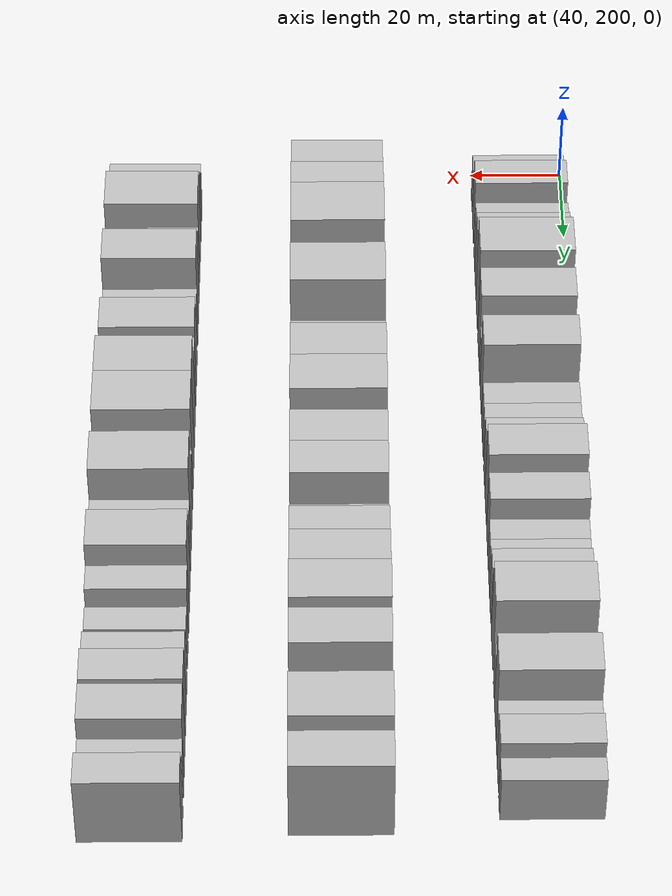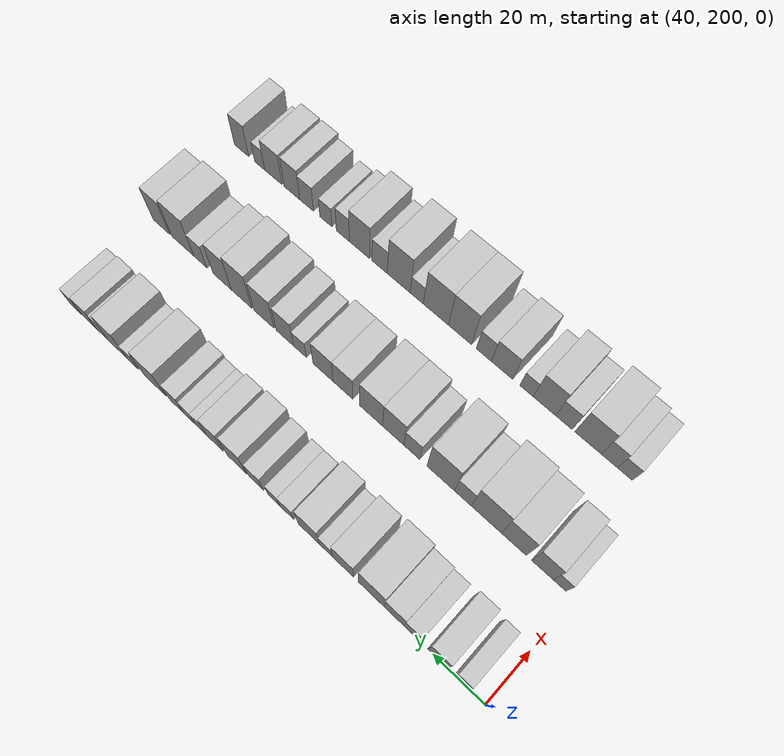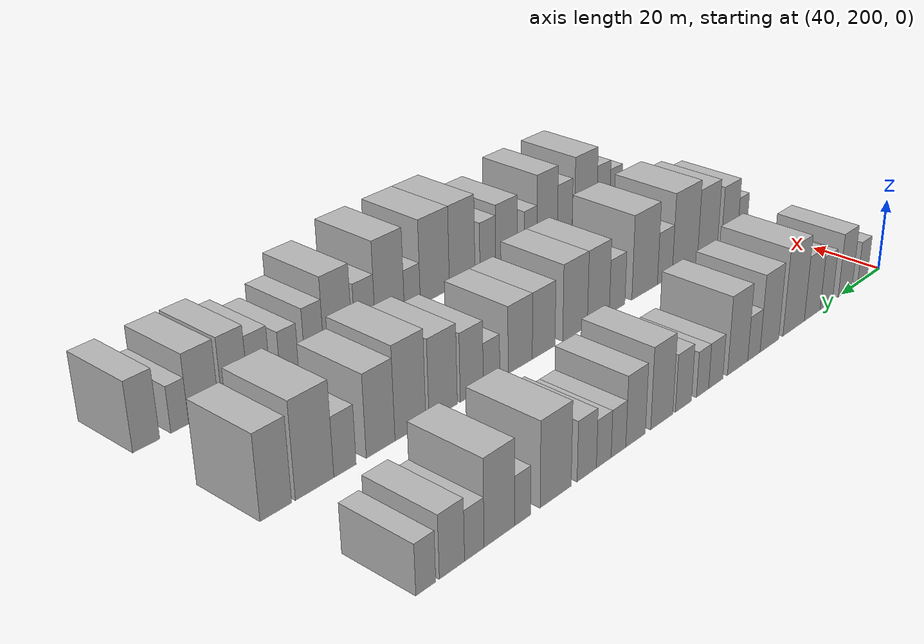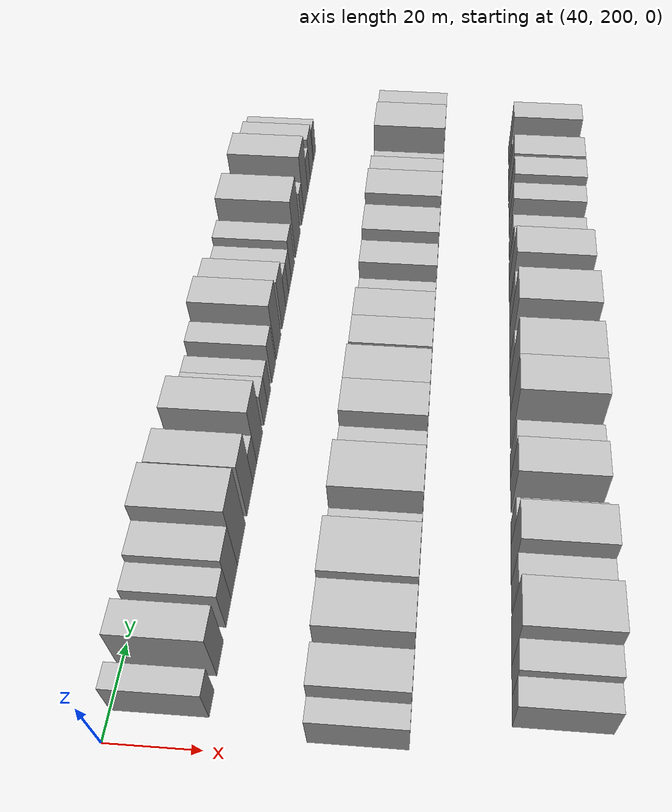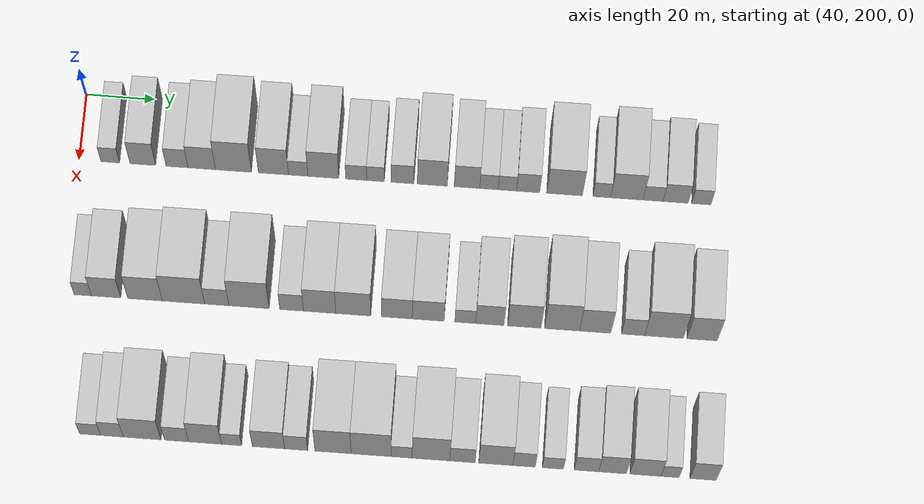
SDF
<sdf version="1.6">
 <world name="default">
  <model name="building_57">
   <static>1</static>
   <pose>50.0000 209.0535 0 0.000000 0.000000 0.000000</pose>
   <link name="link">
    <pose>0 0 6.00 0 0 0</pose>
    <collision name="collision"><geometry><box><size>20.0000 5.3269 12.0000</size></box></geometry></collision>
    <visual name="visual">
     <cast_shadows>0</cast_shadows>
     <geometry><box><size>20.0000 5.3269 12.0000</size></box></geometry>
     <material>
      <script>
       <uri>model://HANNAS_wall/materials/scripts</uri>
       <uri>model://HANNAS_wall/materials/textures</uri>
       <name>vrc/HANNAS_wall</name>
      </script>
     </material>
    </visual>
   </link>
  </model>
  <model name="building_58">
   <static>1</static>
   <pose>50.0000 218.3845 0 0.000000 0.000000 0.000000</pose>
   <link name="link">
    <pose>0 0 9.00 0 0 0</pose>
    <collision name="collision"><geometry><box><size>20.0000 7.3353 18.0000</size></box></geometry></collision>
    <visual name="visual">
     <cast_shadows>0</cast_shadows>
     <geometry><box><size>20.0000 7.3353 18.0000</size></box></geometry>
     <material>
      <script>
       <uri>model://HANNAS_wall/materials/scripts</uri>
       <uri>model://HANNAS_wall/materials/textures</uri>
       <name>vrc/HANNAS_wall</name>
      </script>
     </material>
    </visual>
   </link>
  </model>
  <model name="building_59">
   <static>1</static>
   <pose>50.0000 228.1901 0 0.000000 0.000000 0.000000</pose>
   <link name="link">
    <pose>0 0 7.50 0 0 0</pose>
    <collision name="collision"><geometry><box><size>20.0000 6.2759 15.0000</size></box></geometry></collision>
    <visual name="visual">
     <cast_shadows>0</cast_shadows>
     <geometry><box><size>20.0000 6.2759 15.0000</size></box></geometry>
     <material>
      <script>
       <uri>model://HANNAS_wall/materials/scripts</uri>
       <uri>model://HANNAS_wall/materials/textures</uri>
       <name>vrc/HANNAS_wall</name>
      </script>
     </material>
    </visual>
   </link>
  </model>
  <model name="building_60">
   <static>1</static>
   <pose>50.0000 235.2603 0 0.000000 0.000000 0.000000</pose>
   <link name="link">
    <pose>0 0 9.00 0 0 0</pose>
    <collision name="collision"><geometry><box><size>20.0000 7.8644 18.0000</size></box></geometry></collision>
    <visual name="visual">
     <cast_shadows>0</cast_shadows>
     <geometry><box><size>20.0000 7.8644 18.0000</size></box></geometry>
     <material>
      <script>
       <uri>model://HANNAS_wall/materials/scripts</uri>
       <uri>model://HANNAS_wall/materials/textures</uri>
       <name>vrc/HANNAS_wall</name>
      </script>
     </material>
    </visual>
   </link>
  </model>
  <model name="building_61">
   <static>1</static>
   <pose>50.0000 244.3471 0 0.000000 0.000000 0.000000</pose>
   <link name="link">
    <pose>0 0 12.00 0 0 0</pose>
    <collision name="collision"><geometry><box><size>20.0000 10.3093 24.0000</size></box></geometry></collision>
    <visual name="visual">
     <cast_shadows>0</cast_shadows>
     <geometry><box><size>20.0000 10.3093 24.0000</size></box></geometry>
     <material>
      <script>
       <uri>model://HANNAS_wall/materials/scripts</uri>
       <uri>model://HANNAS_wall/materials/textures</uri>
       <name>vrc/HANNAS_wall</name>
      </script>
     </material>
    </visual>
   </link>
  </model>
  <model name="building_62">
   <static>1</static>
   <pose>50.0000 255.7990 0 0.000000 0.000000 0.000000</pose>
   <link name="link">
    <pose>0 0 10.50 0 0 0</pose>
    <collision name="collision"><geometry><box><size>20.0000 8.5945 21.0000</size></box></geometry></collision>
    <visual name="visual">
     <cast_shadows>0</cast_shadows>
     <geometry><box><size>20.0000 8.5945 21.0000</size></box></geometry>
     <material>
      <script>
       <uri>model://HANNAS_wall/materials/scripts</uri>
       <uri>model://HANNAS_wall/materials/textures</uri>
       <name>vrc/HANNAS_wall</name>
      </script>
     </material>
    </visual>
   </link>
  </model>
  <model name="building_63">
   <static>1</static>
   <pose>50.0000 262.8640 0 0.000000 0.000000 0.000000</pose>
   <link name="link">
    <pose>0 0 6.00 0 0 0</pose>
    <collision name="collision"><geometry><box><size>20.0000 5.5355 12.0000</size></box></geometry></collision>
    <visual name="visual">
     <cast_shadows>0</cast_shadows>
     <geometry><box><size>20.0000 5.5355 12.0000</size></box></geometry>
     <material>
      <script>
       <uri>model://HANNAS_wall/materials/scripts</uri>
       <uri>model://HANNAS_wall/materials/textures</uri>
       <name>vrc/HANNAS_wall</name>
      </script>
     </material>
    </visual>
   </link>
  </model>
  <model name="building_64">
   <static>1</static>
   <pose>50.0000 270.0461 0 0.000000 0.000000 0.000000</pose>
   <link name="link">
    <pose>0 0 10.50 0 0 0</pose>
    <collision name="collision"><geometry><box><size>20.0000 8.8287 21.0000</size></box></geometry></collision>
    <visual name="visual">
     <cast_shadows>0</cast_shadows>
     <geometry><box><size>20.0000 8.8287 21.0000</size></box></geometry>
     <material>
      <script>
       <uri>model://HANNAS_wall/materials/scripts</uri>
       <uri>model://HANNAS_wall/materials/textures</uri>
       <name>vrc/HANNAS_wall</name>
      </script>
     </material>
    </visual>
   </link>
  </model>
  <model name="building_65">
   <static>1</static>
   <pose>50.0000 279.4493 0 0.000000 0.000000 0.000000</pose>
   <link name="link">
    <pose>0 0 6.00 0 0 0</pose>
    <collision name="collision"><geometry><box><size>20.0000 5.9778 12.0000</size></box></geometry></collision>
    <visual name="visual">
     <cast_shadows>0</cast_shadows>
     <geometry><box><size>20.0000 5.9778 12.0000</size></box></geometry>
     <material>
      <script>
       <uri>model://HANNAS_wall/materials/scripts</uri>
       <uri>model://HANNAS_wall/materials/textures</uri>
       <name>vrc/HANNAS_wall</name>
      </script>
     </material>
    </visual>
   </link>
  </model>
  <model name="building_66">
   <static>1</static>
   <pose>50.0000 284.9581 0 0.000000 0.000000 0.000000</pose>
   <link name="link">
    <pose>0 0 6.00 0 0 0</pose>
    <collision name="collision"><geometry><box><size>20.0000 5.0398 12.0000</size></box></geometry></collision>
    <visual name="visual">
     <cast_shadows>0</cast_shadows>
     <geometry><box><size>20.0000 5.0398 12.0000</size></box></geometry>
     <material>
      <script>
       <uri>model://HANNAS_wall/materials/scripts</uri>
       <uri>model://HANNAS_wall/materials/textures</uri>
       <name>vrc/HANNAS_wall</name>
      </script>
     </material>
    </visual>
   </link>
  </model>
  <model name="building_67">
   <static>1</static>
   <pose>50.0000 292.6958 0 0.000000 0.000000 0.000000</pose>
   <link name="link">
    <pose>0 0 7.50 0 0 0</pose>
    <collision name="collision"><geometry><box><size>20.0000 6.4356 15.0000</size></box></geometry></collision>
    <visual name="visual">
     <cast_shadows>0</cast_shadows>
     <geometry><box><size>20.0000 6.4356 15.0000</size></box></geometry>
     <material>
      <script>
       <uri>model://HANNAS_wall/materials/scripts</uri>
       <uri>model://HANNAS_wall/materials/textures</uri>
       <name>vrc/HANNAS_wall</name>
      </script>
     </material>
    </visual>
   </link>
  </model>
  <model name="building_68">
   <static>1</static>
   <pose>50.0000 301.1782 0 0.000000 0.000000 0.000000</pose>
   <link name="link">
    <pose>0 0 10.50 0 0 0</pose>
    <collision name="collision"><geometry><box><size>20.0000 8.5291 21.0000</size></box></geometry></collision>
    <visual name="visual">
     <cast_shadows>0</cast_shadows>
     <geometry><box><size>20.0000 8.5291 21.0000</size></box></geometry>
     <material>
      <script>
       <uri>model://HANNAS_wall/materials/scripts</uri>
       <uri>model://HANNAS_wall/materials/textures</uri>
       <name>vrc/HANNAS_wall</name>
      </script>
     </material>
    </visual>
   </link>
  </model>
  <model name="building_69">
   <static>1</static>
   <pose>50.0000 311.0657 0 0.000000 0.000000 0.000000</pose>
   <link name="link">
    <pose>0 0 9.00 0 0 0</pose>
    <collision name="collision"><geometry><box><size>20.0000 7.2458 18.0000</size></box></geometry></collision>
    <visual name="visual">
     <cast_shadows>0</cast_shadows>
     <geometry><box><size>20.0000 7.2458 18.0000</size></box></geometry>
     <material>
      <script>
       <uri>model://HANNAS_wall/materials/scripts</uri>
       <uri>model://HANNAS_wall/materials/textures</uri>
       <name>vrc/HANNAS_wall</name>
      </script>
     </material>
    </visual>
   </link>
  </model>
  <model name="building_70">
   <static>1</static>
   <pose>50.0000 317.3248 0 0.000000 0.000000 0.000000</pose>
   <link name="link">
    <pose>0 0 6.00 0 0 0</pose>
    <collision name="collision"><geometry><box><size>20.0000 5.2724 12.0000</size></box></geometry></collision>
    <visual name="visual">
     <cast_shadows>0</cast_shadows>
     <geometry><box><size>20.0000 5.2724 12.0000</size></box></geometry>
     <material>
      <script>
       <uri>model://HANNAS_wall/materials/scripts</uri>
       <uri>model://HANNAS_wall/materials/textures</uri>
       <name>vrc/HANNAS_wall</name>
      </script>
     </material>
    </visual>
   </link>
  </model>
  <model name="building_71">
   <static>1</static>
   <pose>50.0000 322.5603 0 0.000000 0.000000 0.000000</pose>
   <link name="link">
    <pose>0 0 6.00 0 0 0</pose>
    <collision name="collision"><geometry><box><size>20.0000 5.1985 12.0000</size></box></geometry></collision>
    <visual name="visual">
     <cast_shadows>0</cast_shadows>
     <geometry><box><size>20.0000 5.1985 12.0000</size></box></geometry>
     <material>
      <script>
       <uri>model://HANNAS_wall/materials/scripts</uri>
       <uri>model://HANNAS_wall/materials/textures</uri>
       <name>vrc/HANNAS_wall</name>
      </script>
     </material>
    </visual>
   </link>
  </model>
  <model name="building_72">
   <static>1</static>
   <pose>50.0000 328.4707 0 0.000000 0.000000 0.000000</pose>
   <link name="link">
    <pose>0 0 7.50 0 0 0</pose>
    <collision name="collision"><geometry><box><size>20.0000 6.6223 15.0000</size></box></geometry></collision>
    <visual name="visual">
     <cast_shadows>0</cast_shadows>
     <geometry><box><size>20.0000 6.6223 15.0000</size></box></geometry>
     <material>
      <script>
       <uri>model://HANNAS_wall/materials/scripts</uri>
       <uri>model://HANNAS_wall/materials/textures</uri>
       <name>vrc/HANNAS_wall</name>
      </script>
     </material>
    </visual>
   </link>
  </model>
  <model name="building_73">
   <static>1</static>
   <pose>50.0000 338.8678 0 0.000000 0.000000 0.000000</pose>
   <link name="link">
    <pose>0 0 10.50 0 0 0</pose>
    <collision name="collision"><geometry><box><size>20.0000 10.1719 21.0000</size></box></geometry></collision>
    <visual name="visual">
     <cast_shadows>0</cast_shadows>
     <geometry><box><size>20.0000 10.1719 21.0000</size></box></geometry>
     <material>
      <script>
       <uri>model://HANNAS_wall/materials/scripts</uri>
       <uri>model://HANNAS_wall/materials/textures</uri>
       <name>vrc/HANNAS_wall</name>
      </script>
     </material>
    </visual>
   </link>
  </model>
  <model name="building_74">
   <static>1</static>
   <pose>50.0000 349.4622 0 0.000000 0.000000 0.000000</pose>
   <link name="link">
    <pose>0 0 6.00 0 0 0</pose>
    <collision name="collision"><geometry><box><size>20.0000 5.0168 12.0000</size></box></geometry></collision>
    <visual name="visual">
     <cast_shadows>0</cast_shadows>
     <geometry><box><size>20.0000 5.0168 12.0000</size></box></geometry>
     <material>
      <script>
       <uri>model://HANNAS_wall/materials/scripts</uri>
       <uri>model://HANNAS_wall/materials/textures</uri>
       <name>vrc/HANNAS_wall</name>
      </script>
     </material>
    </visual>
   </link>
  </model>
  <model name="building_75">
   <static>1</static>
   <pose>50.0000 356.5924 0 0.000000 0.000000 0.000000</pose>
   <link name="link">
    <pose>0 0 10.50 0 0 0</pose>
    <collision name="collision"><geometry><box><size>20.0000 9.2437 21.0000</size></box></geometry></collision>
    <visual name="visual">
     <cast_shadows>0</cast_shadows>
     <geometry><box><size>20.0000 9.2437 21.0000</size></box></geometry>
     <material>
      <script>
       <uri>model://HANNAS_wall/materials/scripts</uri>
       <uri>model://HANNAS_wall/materials/textures</uri>
       <name>vrc/HANNAS_wall</name>
      </script>
     </material>
    </visual>
   </link>
  </model>
  <model name="building_76">
   <static>1</static>
   <pose>50.0000 364.0667 0 0.000000 0.000000 0.000000</pose>
   <link name="link">
    <pose>0 0 6.00 0 0 0</pose>
    <collision name="collision"><geometry><box><size>20.0000 5.7049 12.0000</size></box></geometry></collision>
    <visual name="visual">
     <cast_shadows>0</cast_shadows>
     <geometry><box><size>20.0000 5.7049 12.0000</size></box></geometry>
     <material>
      <script>
       <uri>model://HANNAS_wall/materials/scripts</uri>
       <uri>model://HANNAS_wall/materials/textures</uri>
       <name>vrc/HANNAS_wall</name>
      </script>
     </material>
    </visual>
   </link>
  </model>
  <model name="building_77">
   <static>1</static>
   <pose>50.0000 370.4926 0 0.000000 0.000000 0.000000</pose>
   <link name="link">
    <pose>0 0 7.50 0 0 0</pose>
    <collision name="collision"><geometry><box><size>20.0000 7.1469 15.0000</size></box></geometry></collision>
    <visual name="visual">
     <cast_shadows>0</cast_shadows>
     <geometry><box><size>20.0000 7.1469 15.0000</size></box></geometry>
     <material>
      <script>
       <uri>model://HANNAS_wall/materials/scripts</uri>
       <uri>model://HANNAS_wall/materials/textures</uri>
       <name>vrc/HANNAS_wall</name>
      </script>
     </material>
    </visual>
   </link>
  </model>
  <model name="building_78">
   <static>1</static>
   <pose>50.0000 377.7882 0 0.000000 0.000000 0.000000</pose>
   <link name="link">
    <pose>0 0 6.00 0 0 0</pose>
    <collision name="collision"><geometry><box><size>20.0000 5.4443 12.0000</size></box></geometry></collision>
    <visual name="visual">
     <cast_shadows>0</cast_shadows>
     <geometry><box><size>20.0000 5.4443 12.0000</size></box></geometry>
     <material>
      <script>
       <uri>model://HANNAS_wall/materials/scripts</uri>
       <uri>model://HANNAS_wall/materials/textures</uri>
       <name>vrc/HANNAS_wall</name>
      </script>
     </material>
    </visual>
   </link>
  </model>
  <model name="building_140">
   <static>1</static>
   <pose>90.0000 205.4932 0 0.000000 0.000000 0.000000</pose>
   <link name="link">
    <pose>0 0 6.00 0 0 0</pose>
    <collision name="collision"><geometry><box><size>20.0000 4.8866 12.0000</size></box></geometry></collision>
    <visual name="visual">
     <cast_shadows>0</cast_shadows>
     <geometry><box><size>20.0000 4.8866 12.0000</size></box></geometry>
     <material>
      <script>
       <uri>model://HANNAS_wall/materials/scripts</uri>
       <uri>model://HANNAS_wall/materials/textures</uri>
       <name>vrc/HANNAS_wall</name>
      </script>
     </material>
    </visual>
   </link>
  </model>
  <model name="building_141">
   <static>1</static>
   <pose>90.0000 212.0581 0 0.000000 0.000000 0.000000</pose>
   <link name="link">
    <pose>0 0 9.00 0 0 0</pose>
    <collision name="collision"><geometry><box><size>20.0000 8.2431 18.0000</size></box></geometry></collision>
    <visual name="visual">
     <cast_shadows>0</cast_shadows>
     <geometry><box><size>20.0000 8.2431 18.0000</size></box></geometry>
     <material>
      <script>
       <uri>model://HANNAS_wall/materials/scripts</uri>
       <uri>model://HANNAS_wall/materials/textures</uri>
       <name>vrc/HANNAS_wall</name>
      </script>
     </material>
    </visual>
   </link>
  </model>
  <model name="building_142">
   <static>1</static>
   <pose>90.0000 223.0685 0 0.000000 0.000000 0.000000</pose>
   <link name="link">
    <pose>0 0 10.50 0 0 0</pose>
    <collision name="collision"><geometry><box><size>20.0000 9.7777 21.0000</size></box></geometry></collision>
    <visual name="visual">
     <cast_shadows>0</cast_shadows>
     <geometry><box><size>20.0000 9.7777 21.0000</size></box></geometry>
     <material>
      <script>
       <uri>model://HANNAS_wall/materials/scripts</uri>
       <uri>model://HANNAS_wall/materials/textures</uri>
       <name>vrc/HANNAS_wall</name>
      </script>
     </material>
    </visual>
   </link>
  </model>
  <model name="building_143">
   <static>1</static>
   <pose>90.0000 233.9343 0 0.000000 0.000000 0.000000</pose>
   <link name="link">
    <pose>0 0 12.00 0 0 0</pose>
    <collision name="collision"><geometry><box><size>20.0000 11.9538 24.0000</size></box></geometry></collision>
    <visual name="visual">
     <cast_shadows>0</cast_shadows>
     <geometry><box><size>20.0000 11.9538 24.0000</size></box></geometry>
     <material>
      <script>
       <uri>model://HANNAS_wall/materials/scripts</uri>
       <uri>model://HANNAS_wall/materials/textures</uri>
       <name>vrc/HANNAS_wall</name>
      </script>
     </material>
    </visual>
   </link>
  </model>
  <model name="building_144">
   <static>1</static>
   <pose>90.0000 243.3191 0 0.000000 0.000000 0.000000</pose>
   <link name="link">
    <pose>0 0 7.50 0 0 0</pose>
    <collision name="collision"><geometry><box><size>20.0000 6.8157 15.0000</size></box></geometry></collision>
    <visual name="visual">
     <cast_shadows>0</cast_shadows>
     <geometry><box><size>20.0000 6.8157 15.0000</size></box></geometry>
     <material>
      <script>
       <uri>model://HANNAS_wall/materials/scripts</uri>
       <uri>model://HANNAS_wall/materials/textures</uri>
       <name>vrc/HANNAS_wall</name>
      </script>
     </material>
    </visual>
   </link>
  </model>
  <model name="building_145">
   <static>1</static>
   <pose>90.0000 252.4125 0 0.000000 0.000000 0.000000</pose>
   <link name="link">
    <pose>0 0 12.00 0 0 0</pose>
    <collision name="collision"><geometry><box><size>20.0000 11.3711 24.0000</size></box></geometry></collision>
    <visual name="visual">
     <cast_shadows>0</cast_shadows>
     <geometry><box><size>20.0000 11.3711 24.0000</size></box></geometry>
     <material>
      <script>
       <uri>model://HANNAS_wall/materials/scripts</uri>
       <uri>model://HANNAS_wall/materials/textures</uri>
       <name>vrc/HANNAS_wall</name>
      </script>
     </material>
    </visual>
   </link>
  </model>
  <model name="building_146">
   <static>1</static>
   <pose>90.0000 264.4256 0 0.000000 0.000000 0.000000</pose>
   <link name="link">
    <pose>0 0 7.50 0 0 0</pose>
    <collision name="collision"><geometry><box><size>20.0000 6.6551 15.0000</size></box></geometry></collision>
    <visual name="visual">
     <cast_shadows>0</cast_shadows>
     <geometry><box><size>20.0000 6.6551 15.0000</size></box></geometry>
     <material>
      <script>
       <uri>model://HANNAS_wall/materials/scripts</uri>
       <uri>model://HANNAS_wall/materials/textures</uri>
       <name>vrc/HANNAS_wall</name>
      </script>
     </material>
    </visual>
   </link>
  </model>
  <model name="building_147">
   <static>1</static>
   <pose>90.0000 272.3070 0 0.000000 0.000000 0.000000</pose>
   <link name="link">
    <pose>0 0 10.50 0 0 0</pose>
    <collision name="collision"><geometry><box><size>20.0000 9.1076 21.0000</size></box></geometry></collision>
    <visual name="visual">
     <cast_shadows>0</cast_shadows>
     <geometry><box><size>20.0000 9.1076 21.0000</size></box></geometry>
     <material>
      <script>
       <uri>model://HANNAS_wall/materials/scripts</uri>
       <uri>model://HANNAS_wall/materials/textures</uri>
       <name>vrc/HANNAS_wall</name>
      </script>
     </material>
    </visual>
   </link>
  </model>
  <model name="building_148">
   <static>1</static>
   <pose>90.0000 281.7952 0 0.000000 0.000000 0.000000</pose>
   <link name="link">
    <pose>0 0 10.50 0 0 0</pose>
    <collision name="collision"><geometry><box><size>20.0000 9.8687 21.0000</size></box></geometry></collision>
    <visual name="visual">
     <cast_shadows>0</cast_shadows>
     <geometry><box><size>20.0000 9.8687 21.0000</size></box></geometry>
     <material>
      <script>
       <uri>model://HANNAS_wall/materials/scripts</uri>
       <uri>model://HANNAS_wall/materials/textures</uri>
       <name>vrc/HANNAS_wall</name>
      </script>
     </material>
    </visual>
   </link>
  </model>
  <model name="building_149">
   <static>1</static>
   <pose>90.0000 294.0763 0 0.000000 0.000000 0.000000</pose>
   <link name="link">
    <pose>0 0 9.00 0 0 0</pose>
    <collision name="collision"><geometry><box><size>20.0000 8.6936 18.0000</size></box></geometry></collision>
    <visual name="visual">
     <cast_shadows>0</cast_shadows>
     <geometry><box><size>20.0000 8.6936 18.0000</size></box></geometry>
     <material>
      <script>
       <uri>model://HANNAS_wall/materials/scripts</uri>
       <uri>model://HANNAS_wall/materials/textures</uri>
       <name>vrc/HANNAS_wall</name>
      </script>
     </material>
    </visual>
   </link>
  </model>
  <model name="building_150">
   <static>1</static>
   <pose>90.0000 302.8965 0 0.000000 0.000000 0.000000</pose>
   <link name="link">
    <pose>0 0 9.00 0 0 0</pose>
    <collision name="collision"><geometry><box><size>20.0000 8.9467 18.0000</size></box></geometry></collision>
    <visual name="visual">
     <cast_shadows>0</cast_shadows>
     <geometry><box><size>20.0000 8.9467 18.0000</size></box></geometry>
     <material>
      <script>
       <uri>model://HANNAS_wall/materials/scripts</uri>
       <uri>model://HANNAS_wall/materials/textures</uri>
       <name>vrc/HANNAS_wall</name>
      </script>
     </material>
    </visual>
   </link>
  </model>
  <model name="building_151">
   <static>1</static>
   <pose>90.0000 313.2836 0 0.000000 0.000000 0.000000</pose>
   <link name="link">
    <pose>0 0 6.00 0 0 0</pose>
    <collision name="collision"><geometry><box><size>20.0000 5.8277 12.0000</size></box></geometry></collision>
    <visual name="visual">
     <cast_shadows>0</cast_shadows>
     <geometry><box><size>20.0000 5.8277 12.0000</size></box></geometry>
     <material>
      <script>
       <uri>model://HANNAS_wall/materials/scripts</uri>
       <uri>model://HANNAS_wall/materials/textures</uri>
       <name>vrc/HANNAS_wall</name>
      </script>
     </material>
    </visual>
   </link>
  </model>
  <model name="building_152">
   <static>1</static>
   <pose>90.0000 320.1750 0 0.000000 0.000000 0.000000</pose>
   <link name="link">
    <pose>0 0 9.00 0 0 0</pose>
    <collision name="collision"><geometry><box><size>20.0000 7.9552 18.0000</size></box></geometry></collision>
    <visual name="visual">
     <cast_shadows>0</cast_shadows>
     <geometry><box><size>20.0000 7.9552 18.0000</size></box></geometry>
     <material>
      <script>
       <uri>model://HANNAS_wall/materials/scripts</uri>
       <uri>model://HANNAS_wall/materials/textures</uri>
       <name>vrc/HANNAS_wall</name>
      </script>
     </material>
    </visual>
   </link>
  </model>
  <model name="building_153">
   <static>1</static>
   <pose>90.0000 329.8572 0 0.000000 0.000000 0.000000</pose>
   <link name="link">
    <pose>0 0 10.50 0 0 0</pose>
    <collision name="collision"><geometry><box><size>20.0000 9.4092 21.0000</size></box></geometry></collision>
    <visual name="visual">
     <cast_shadows>0</cast_shadows>
     <geometry><box><size>20.0000 9.4092 21.0000</size></box></geometry>
     <material>
      <script>
       <uri>model://HANNAS_wall/materials/scripts</uri>
       <uri>model://HANNAS_wall/materials/textures</uri>
       <name>vrc/HANNAS_wall</name>
      </script>
     </material>
    </visual>
   </link>
  </model>
  <model name="building_154">
   <static>1</static>
   <pose>90.0000 340.4637 0 0.000000 0.000000 0.000000</pose>
   <link name="link">
    <pose>0 0 12.00 0 0 0</pose>
    <collision name="collision"><geometry><box><size>20.0000 9.8037 24.0000</size></box></geometry></collision>
    <visual name="visual">
     <cast_shadows>0</cast_shadows>
     <geometry><box><size>20.0000 9.8037 24.0000</size></box></geometry>
     <material>
      <script>
       <uri>model://HANNAS_wall/materials/scripts</uri>
       <uri>model://HANNAS_wall/materials/textures</uri>
       <name>vrc/HANNAS_wall</name>
      </script>
     </material>
    </visual>
   </link>
  </model>
  <model name="building_155">
   <static>1</static>
   <pose>90.0000 349.7673 0 0.000000 0.000000 0.000000</pose>
   <link name="link">
    <pose>0 0 10.50 0 0 0</pose>
    <collision name="collision"><geometry><box><size>20.0000 8.8034 21.0000</size></box></geometry></collision>
    <visual name="visual">
     <cast_shadows>0</cast_shadows>
     <geometry><box><size>20.0000 8.8034 21.0000</size></box></geometry>
     <material>
      <script>
       <uri>model://HANNAS_wall/materials/scripts</uri>
       <uri>model://HANNAS_wall/materials/textures</uri>
       <name>vrc/HANNAS_wall</name>
      </script>
     </material>
    </visual>
   </link>
  </model>
  <model name="building_156">
   <static>1</static>
   <pose>90.0000 360.4231 0 0.000000 0.000000 0.000000</pose>
   <link name="link">
    <pose>0 0 7.50 0 0 0</pose>
    <collision name="collision"><geometry><box><size>20.0000 6.5082 15.0000</size></box></geometry></collision>
    <visual name="visual">
     <cast_shadows>0</cast_shadows>
     <geometry><box><size>20.0000 6.5082 15.0000</size></box></geometry>
     <material>
      <script>
       <uri>model://HANNAS_wall/materials/scripts</uri>
       <uri>model://HANNAS_wall/materials/textures</uri>
       <name>vrc/HANNAS_wall</name>
      </script>
     </material>
    </visual>
   </link>
  </model>
  <model name="building_157">
   <static>1</static>
   <pose>90.0000 369.0921 0 0.000000 0.000000 0.000000</pose>
   <link name="link">
    <pose>0 0 12.00 0 0 0</pose>
    <collision name="collision"><geometry><box><size>20.0000 10.8297 24.0000</size></box></geometry></collision>
    <visual name="visual">
     <cast_shadows>0</cast_shadows>
     <geometry><box><size>20.0000 10.8297 24.0000</size></box></geometry>
     <material>
      <script>
       <uri>model://HANNAS_wall/materials/scripts</uri>
       <uri>model://HANNAS_wall/materials/textures</uri>
       <name>vrc/HANNAS_wall</name>
      </script>
     </material>
    </visual>
   </link>
  </model>
  <model name="building_158">
   <static>1</static>
   <pose>90.0000 379.7616 0 0.000000 0.000000 0.000000</pose>
   <link name="link">
    <pose>0 0 10.50 0 0 0</pose>
    <collision name="collision"><geometry><box><size>20.0000 8.5093 21.0000</size></box></geometry></collision>
    <visual name="visual">
     <cast_shadows>0</cast_shadows>
     <geometry><box><size>20.0000 8.5093 21.0000</size></box></geometry>
     <material>
      <script>
       <uri>model://HANNAS_wall/materials/scripts</uri>
       <uri>model://HANNAS_wall/materials/textures</uri>
       <name>vrc/HANNAS_wall</name>
      </script>
     </material>
    </visual>
   </link>
  </model>
  <model name="building_226">
   <static>1</static>
   <pose>130.0000 211.8191 0 0.000000 0.000000 0.000000</pose>
   <link name="link">
    <pose>0 0 6.00 0 0 0</pose>
    <collision name="collision"><geometry><box><size>20.0000 5.8389 12.0000</size></box></geometry></collision>
    <visual name="visual">
     <cast_shadows>0</cast_shadows>
     <geometry><box><size>20.0000 5.8389 12.0000</size></box></geometry>
     <material>
      <script>
       <uri>model://HANNAS_wall/materials/scripts</uri>
       <uri>model://HANNAS_wall/materials/textures</uri>
       <name>vrc/HANNAS_wall</name>
      </script>
     </material>
    </visual>
   </link>
  </model>
  <model name="building_227">
   <static>1</static>
   <pose>130.0000 217.9006 0 0.000000 0.000000 0.000000</pose>
   <link name="link">
    <pose>0 0 7.50 0 0 0</pose>
    <collision name="collision"><geometry><box><size>20.0000 6.3240 15.0000</size></box></geometry></collision>
    <visual name="visual">
     <cast_shadows>0</cast_shadows>
     <geometry><box><size>20.0000 6.3240 15.0000</size></box></geometry>
     <material>
      <script>
       <uri>model://HANNAS_wall/materials/scripts</uri>
       <uri>model://HANNAS_wall/materials/textures</uri>
       <name>vrc/HANNAS_wall</name>
      </script>
     </material>
    </visual>
   </link>
  </model>
  <model name="building_228">
   <static>1</static>
   <pose>130.0000 226.2940 0 0.000000 0.000000 0.000000</pose>
   <link name="link">
    <pose>0 0 10.50 0 0 0</pose>
    <collision name="collision"><geometry><box><size>20.0000 10.4629 21.0000</size></box></geometry></collision>
    <visual name="visual">
     <cast_shadows>0</cast_shadows>
     <geometry><box><size>20.0000 10.4629 21.0000</size></box></geometry>
     <material>
      <script>
       <uri>model://HANNAS_wall/materials/scripts</uri>
       <uri>model://HANNAS_wall/materials/textures</uri>
       <name>vrc/HANNAS_wall</name>
      </script>
     </material>
    </visual>
   </link>
  </model>
  <model name="building_229">
   <static>1</static>
   <pose>130.0000 235.8834 0 0.000000 0.000000 0.000000</pose>
   <link name="link">
    <pose>0 0 7.50 0 0 0</pose>
    <collision name="collision"><geometry><box><size>20.0000 6.7160 15.0000</size></box></geometry></collision>
    <visual name="visual">
     <cast_shadows>0</cast_shadows>
     <geometry><box><size>20.0000 6.7160 15.0000</size></box></geometry>
     <material>
      <script>
       <uri>model://HANNAS_wall/materials/scripts</uri>
       <uri>model://HANNAS_wall/materials/textures</uri>
       <name>vrc/HANNAS_wall</name>
      </script>
     </material>
    </visual>
   </link>
  </model>
  <model name="building_230">
   <static>1</static>
   <pose>130.0000 243.8181 0 0.000000 0.000000 0.000000</pose>
   <link name="link">
    <pose>0 0 10.50 0 0 0</pose>
    <collision name="collision"><geometry><box><size>20.0000 9.1535 21.0000</size></box></geometry></collision>
    <visual name="visual">
     <cast_shadows>0</cast_shadows>
     <geometry><box><size>20.0000 9.1535 21.0000</size></box></geometry>
     <material>
      <script>
       <uri>model://HANNAS_wall/materials/scripts</uri>
       <uri>model://HANNAS_wall/materials/textures</uri>
       <name>vrc/HANNAS_wall</name>
      </script>
     </material>
    </visual>
   </link>
  </model>
  <model name="building_231">
   <static>1</static>
   <pose>130.0000 251.1679 0 0.000000 0.000000 0.000000</pose>
   <link name="link">
    <pose>0 0 6.00 0 0 0</pose>
    <collision name="collision"><geometry><box><size>20.0000 5.5462 12.0000</size></box></geometry></collision>
    <visual name="visual">
     <cast_shadows>0</cast_shadows>
     <geometry><box><size>20.0000 5.5462 12.0000</size></box></geometry>
     <material>
      <script>
       <uri>model://HANNAS_wall/materials/scripts</uri>
       <uri>model://HANNAS_wall/materials/textures</uri>
       <name>vrc/HANNAS_wall</name>
      </script>
     </material>
    </visual>
   </link>
  </model>
  <model name="building_232">
   <static>1</static>
   <pose>130.0000 261.4256 0 0.000000 0.000000 0.000000</pose>
   <link name="link">
    <pose>0 0 9.00 0 0 0</pose>
    <collision name="collision"><geometry><box><size>20.0000 8.9690 18.0000</size></box></geometry></collision>
    <visual name="visual">
     <cast_shadows>0</cast_shadows>
     <geometry><box><size>20.0000 8.9690 18.0000</size></box></geometry>
     <material>
      <script>
       <uri>model://HANNAS_wall/materials/scripts</uri>
       <uri>model://HANNAS_wall/materials/textures</uri>
       <name>vrc/HANNAS_wall</name>
      </script>
     </material>
    </visual>
   </link>
  </model>
  <model name="building_233">
   <static>1</static>
   <pose>130.0000 269.1199 0 0.000000 0.000000 0.000000</pose>
   <link name="link">
    <pose>0 0 7.50 0 0 0</pose>
    <collision name="collision"><geometry><box><size>20.0000 6.4197 15.0000</size></box></geometry></collision>
    <visual name="visual">
     <cast_shadows>0</cast_shadows>
     <geometry><box><size>20.0000 6.4197 15.0000</size></box></geometry>
     <material>
      <script>
       <uri>model://HANNAS_wall/materials/scripts</uri>
       <uri>model://HANNAS_wall/materials/textures</uri>
       <name>vrc/HANNAS_wall</name>
      </script>
     </material>
    </visual>
   </link>
  </model>
  <model name="building_234">
   <static>1</static>
   <pose>130.0000 279.3569 0 0.000000 0.000000 0.000000</pose>
   <link name="link">
    <pose>0 0 12.00 0 0 0</pose>
    <collision name="collision"><geometry><box><size>20.0000 10.0542 24.0000</size></box></geometry></collision>
    <visual name="visual">
     <cast_shadows>0</cast_shadows>
     <geometry><box><size>20.0000 10.0542 24.0000</size></box></geometry>
     <material>
      <script>
       <uri>model://HANNAS_wall/materials/scripts</uri>
       <uri>model://HANNAS_wall/materials/textures</uri>
       <name>vrc/HANNAS_wall</name>
      </script>
     </material>
    </visual>
   </link>
  </model>
  <model name="building_235">
   <static>1</static>
   <pose>130.0000 289.9087 0 0.000000 0.000000 0.000000</pose>
   <link name="link">
    <pose>0 0 12.00 0 0 0</pose>
    <collision name="collision"><geometry><box><size>20.0000 11.0494 24.0000</size></box></geometry></collision>
    <visual name="visual">
     <cast_shadows>0</cast_shadows>
     <geometry><box><size>20.0000 11.0494 24.0000</size></box></geometry>
     <material>
      <script>
       <uri>model://HANNAS_wall/materials/scripts</uri>
       <uri>model://HANNAS_wall/materials/textures</uri>
       <name>vrc/HANNAS_wall</name>
      </script>
     </material>
    </visual>
   </link>
  </model>
  <model name="building_236">
   <static>1</static>
   <pose>130.0000 298.3688 0 0.000000 0.000000 0.000000</pose>
   <link name="link">
    <pose>0 0 6.00 0 0 0</pose>
    <collision name="collision"><geometry><box><size>20.0000 5.8708 12.0000</size></box></geometry></collision>
    <visual name="visual">
     <cast_shadows>0</cast_shadows>
     <geometry><box><size>20.0000 5.8708 12.0000</size></box></geometry>
     <material>
      <script>
       <uri>model://HANNAS_wall/materials/scripts</uri>
       <uri>model://HANNAS_wall/materials/textures</uri>
       <name>vrc/HANNAS_wall</name>
      </script>
     </material>
    </visual>
   </link>
  </model>
  <model name="building_237">
   <static>1</static>
   <pose>130.0000 306.5243 0 0.000000 0.000000 0.000000</pose>
   <link name="link">
    <pose>0 0 12.00 0 0 0</pose>
    <collision name="collision"><geometry><box><size>20.0000 10.4401 24.0000</size></box></geometry></collision>
    <visual name="visual">
     <cast_shadows>0</cast_shadows>
     <geometry><box><size>20.0000 10.4401 24.0000</size></box></geometry>
     <material>
      <script>
       <uri>model://HANNAS_wall/materials/scripts</uri>
       <uri>model://HANNAS_wall/materials/textures</uri>
       <name>vrc/HANNAS_wall</name>
      </script>
     </material>
    </visual>
   </link>
  </model>
  <model name="building_238">
   <static>1</static>
   <pose>130.0000 315.2476 0 0.000000 0.000000 0.000000</pose>
   <link name="link">
    <pose>0 0 7.50 0 0 0</pose>
    <collision name="collision"><geometry><box><size>20.0000 7.0064 15.0000</size></box></geometry></collision>
    <visual name="visual">
     <cast_shadows>0</cast_shadows>
     <geometry><box><size>20.0000 7.0064 15.0000</size></box></geometry>
     <material>
      <script>
       <uri>model://HANNAS_wall/materials/scripts</uri>
       <uri>model://HANNAS_wall/materials/textures</uri>
       <name>vrc/HANNAS_wall</name>
      </script>
     </material>
    </visual>
   </link>
  </model>
  <model name="building_239">
   <static>1</static>
   <pose>130.0000 324.4612 0 0.000000 0.000000 0.000000</pose>
   <link name="link">
    <pose>0 0 10.50 0 0 0</pose>
    <collision name="collision"><geometry><box><size>20.0000 9.4209 21.0000</size></box></geometry></collision>
    <visual name="visual">
     <cast_shadows>0</cast_shadows>
     <geometry><box><size>20.0000 9.4209 21.0000</size></box></geometry>
     <material>
      <script>
       <uri>model://HANNAS_wall/materials/scripts</uri>
       <uri>model://HANNAS_wall/materials/textures</uri>
       <name>vrc/HANNAS_wall</name>
      </script>
     </material>
    </visual>
   </link>
  </model>
  <model name="building_240">
   <static>1</static>
   <pose>130.0000 332.2702 0 0.000000 0.000000 0.000000</pose>
   <link name="link">
    <pose>0 0 7.50 0 0 0</pose>
    <collision name="collision"><geometry><box><size>20.0000 6.1970 15.0000</size></box></geometry></collision>
    <visual name="visual">
     <cast_shadows>0</cast_shadows>
     <geometry><box><size>20.0000 6.1970 15.0000</size></box></geometry>
     <material>
      <script>
       <uri>model://HANNAS_wall/materials/scripts</uri>
       <uri>model://HANNAS_wall/materials/textures</uri>
       <name>vrc/HANNAS_wall</name>
      </script>
     </material>
    </visual>
   </link>
  </model>
  <model name="building_241">
   <static>1</static>
   <pose>130.0000 340.2792 0 0.000000 0.000000 0.000000</pose>
   <link name="link">
    <pose>0 0 6.00 0 0 0</pose>
    <collision name="collision"><geometry><box><size>20.0000 5.8210 12.0000</size></box></geometry></collision>
    <visual name="visual">
     <cast_shadows>0</cast_shadows>
     <geometry><box><size>20.0000 5.8210 12.0000</size></box></geometry>
     <material>
      <script>
       <uri>model://HANNAS_wall/materials/scripts</uri>
       <uri>model://HANNAS_wall/materials/textures</uri>
       <name>vrc/HANNAS_wall</name>
      </script>
     </material>
    </visual>
   </link>
  </model>
  <model name="building_242">
   <static>1</static>
   <pose>130.0000 349.5592 0 0.000000 0.000000 0.000000</pose>
   <link name="link">
    <pose>0 0 7.50 0 0 0</pose>
    <collision name="collision"><geometry><box><size>20.0000 6.7390 15.0000</size></box></geometry></collision>
    <visual name="visual">
     <cast_shadows>0</cast_shadows>
     <geometry><box><size>20.0000 6.7390 15.0000</size></box></geometry>
     <material>
      <script>
       <uri>model://HANNAS_wall/materials/scripts</uri>
       <uri>model://HANNAS_wall/materials/textures</uri>
       <name>vrc/HANNAS_wall</name>
      </script>
     </material>
    </visual>
   </link>
  </model>
  <model name="building_243">
   <static>1</static>
   <pose>130.0000 356.7601 0 0.000000 0.000000 0.000000</pose>
   <link name="link">
    <pose>0 0 9.00 0 0 0</pose>
    <collision name="collision"><geometry><box><size>20.0000 7.6626 18.0000</size></box></geometry></collision>
    <visual name="visual">
     <cast_shadows>0</cast_shadows>
     <geometry><box><size>20.0000 7.6626 18.0000</size></box></geometry>
     <material>
      <script>
       <uri>model://HANNAS_wall/materials/scripts</uri>
       <uri>model://HANNAS_wall/materials/textures</uri>
       <name>vrc/HANNAS_wall</name>
      </script>
     </material>
    </visual>
   </link>
  </model>
  <model name="building_244">
   <static>1</static>
   <pose>130.0000 365.8996 0 0.000000 0.000000 0.000000</pose>
   <link name="link">
    <pose>0 0 9.00 0 0 0</pose>
    <collision name="collision"><geometry><box><size>20.0000 8.6166 18.0000</size></box></geometry></collision>
    <visual name="visual">
     <cast_shadows>0</cast_shadows>
     <geometry><box><size>20.0000 8.6166 18.0000</size></box></geometry>
     <material>
      <script>
       <uri>model://HANNAS_wall/materials/scripts</uri>
       <uri>model://HANNAS_wall/materials/textures</uri>
       <name>vrc/HANNAS_wall</name>
      </script>
     </material>
    </visual>
   </link>
  </model>
  <model name="building_245">
   <static>1</static>
   <pose>130.0000 372.6884 0 0.000000 0.000000 0.000000</pose>
   <link name="link">
    <pose>0 0 6.00 0 0 0</pose>
    <collision name="collision"><geometry><box><size>20.0000 4.9609 12.0000</size></box></geometry></collision>
    <visual name="visual">
     <cast_shadows>0</cast_shadows>
     <geometry><box><size>20.0000 4.9609 12.0000</size></box></geometry>
     <material>
      <script>
       <uri>model://HANNAS_wall/materials/scripts</uri>
       <uri>model://HANNAS_wall/materials/textures</uri>
       <name>vrc/HANNAS_wall</name>
      </script>
     </material>
    </visual>
   </link>
  </model>
  <model name="building_246">
   <static>1</static>
   <pose>130.0000 381.7890 0 0.000000 0.000000 0.000000</pose>
   <link name="link">
    <pose>0 0 9.00 0 0 0</pose>
    <collision name="collision"><geometry><box><size>20.0000 7.2403 18.0000</size></box></geometry></collision>
    <visual name="visual">
     <cast_shadows>0</cast_shadows>
     <geometry><box><size>20.0000 7.2403 18.0000</size></box></geometry>
     <material>
      <script>
       <uri>model://HANNAS_wall/materials/scripts</uri>
       <uri>model://HANNAS_wall/materials/textures</uri>
       <name>vrc/HANNAS_wall</name>
      </script>
     </material>
    </visual>
   </link>
  </model>
 </world>
</sdf>
